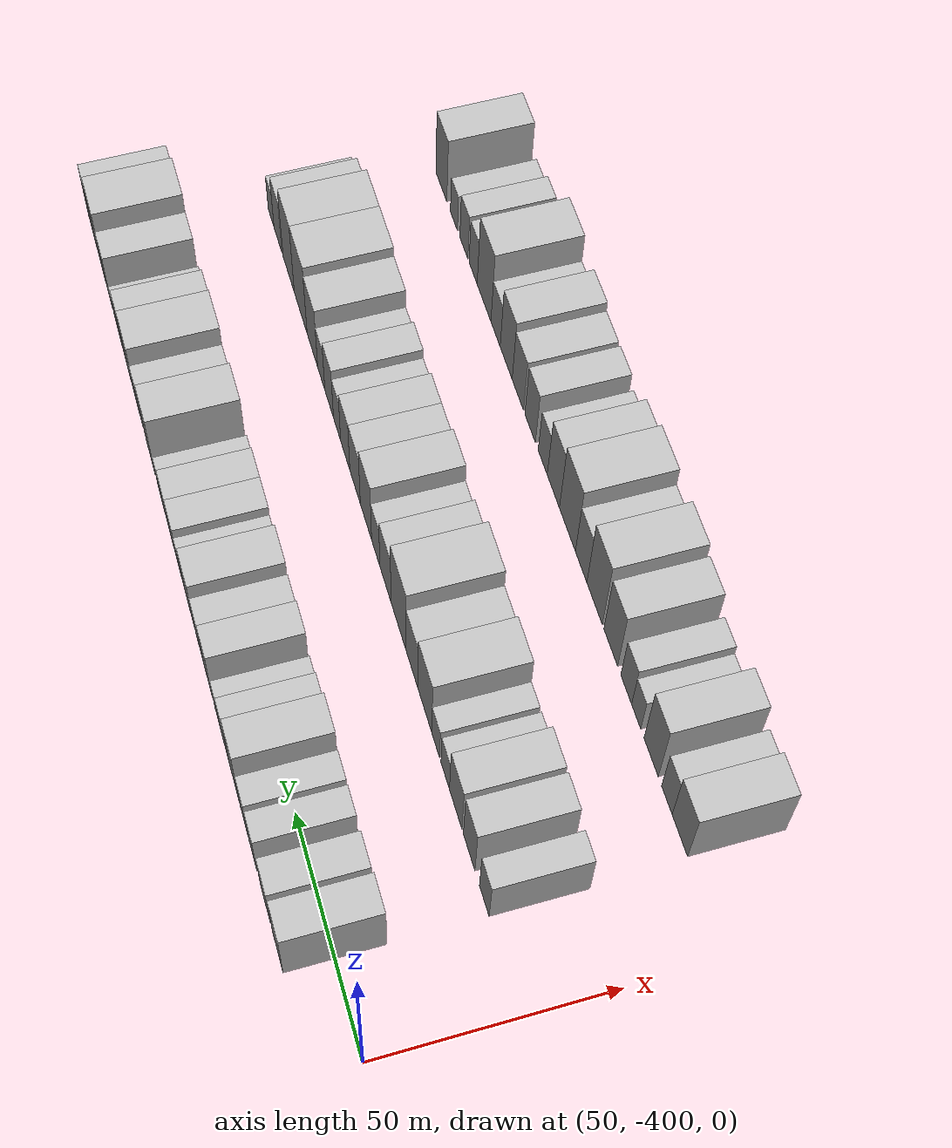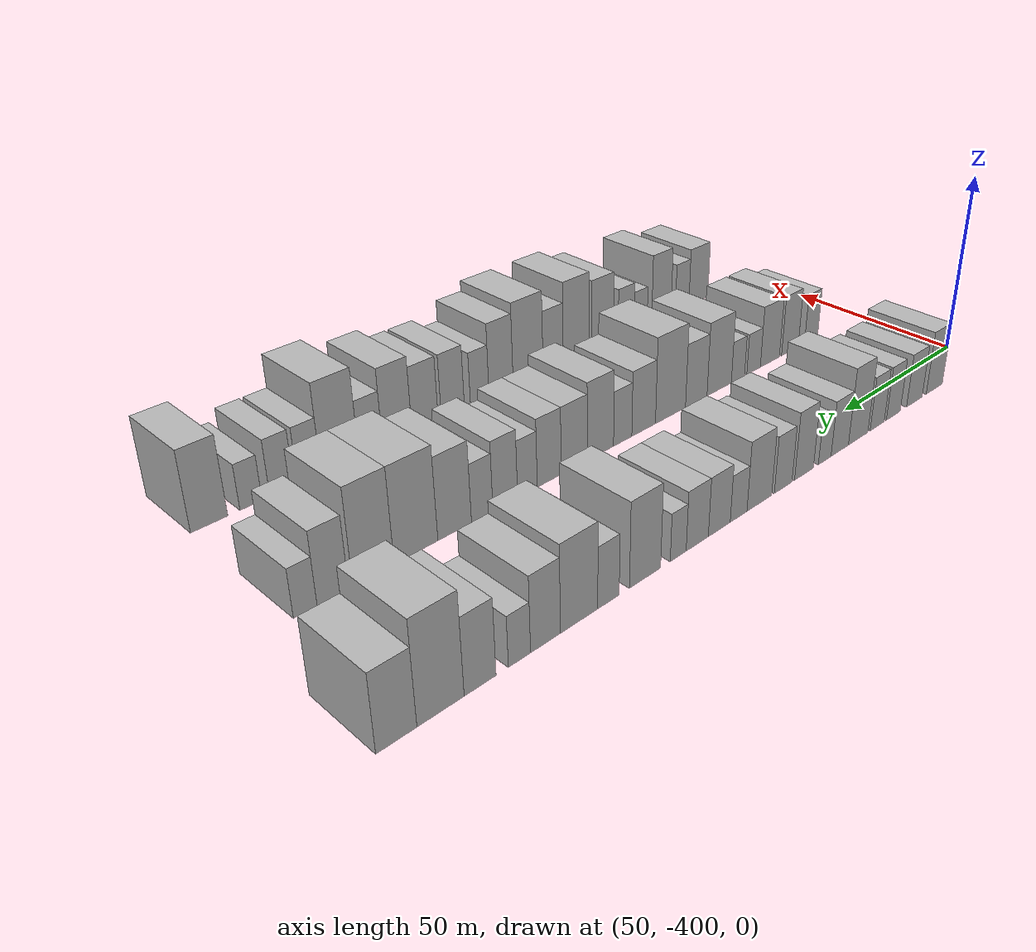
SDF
<sdf version="1.6">
 <world name="default">
  <model name="building_1">
   <static>1</static>
   <pose>50.0000 -375.9654 0 0.000000 0.000000 0.000000</pose>
   <link name="link">
    <pose>0 0 9.00 0 0 0</pose>
    <collision name="collision"><geometry><box><size>20.0000 8.0692 18.0000</size></box></geometry></collision>
    <visual name="visual">
     <cast_shadows>0</cast_shadows>
     <geometry><box><size>20.0000 8.0692 18.0000</size></box></geometry>
     <material>
      <script>
       <uri>model://HANNAS_wall/materials/scripts</uri>
       <uri>model://HANNAS_wall/materials/textures</uri>
       <name>vrc/HANNAS_wall</name>
      </script>
     </material>
    </visual>
   </link>
  </model>
  <model name="building_2">
   <static>1</static>
   <pose>50.0000 -366.1815 0 0.000000 0.000000 0.000000</pose>
   <link name="link">
    <pose>0 0 7.50 0 0 0</pose>
    <collision name="collision"><geometry><box><size>20.0000 7.4985 15.0000</size></box></geometry></collision>
    <visual name="visual">
     <cast_shadows>0</cast_shadows>
     <geometry><box><size>20.0000 7.4985 15.0000</size></box></geometry>
     <material>
      <script>
       <uri>model://HANNAS_wall/materials/scripts</uri>
       <uri>model://HANNAS_wall/materials/textures</uri>
       <name>vrc/HANNAS_wall</name>
      </script>
     </material>
    </visual>
   </link>
  </model>
  <model name="building_3">
   <static>1</static>
   <pose>50.0000 -356.2268 0 0.000000 0.000000 0.000000</pose>
   <link name="link">
    <pose>0 0 7.50 0 0 0</pose>
    <collision name="collision"><geometry><box><size>20.0000 6.4109 15.0000</size></box></geometry></collision>
    <visual name="visual">
     <cast_shadows>0</cast_shadows>
     <geometry><box><size>20.0000 6.4109 15.0000</size></box></geometry>
     <material>
      <script>
       <uri>model://HANNAS_wall/materials/scripts</uri>
       <uri>model://HANNAS_wall/materials/textures</uri>
       <name>vrc/HANNAS_wall</name>
      </script>
     </material>
    </visual>
   </link>
  </model>
  <model name="building_4">
   <static>1</static>
   <pose>50.0000 -348.8674 0 0.000000 0.000000 0.000000</pose>
   <link name="link">
    <pose>0 0 7.50 0 0 0</pose>
    <collision name="collision"><geometry><box><size>20.0000 6.3079 15.0000</size></box></geometry></collision>
    <visual name="visual">
     <cast_shadows>0</cast_shadows>
     <geometry><box><size>20.0000 6.3079 15.0000</size></box></geometry>
     <material>
      <script>
       <uri>model://HANNAS_wall/materials/scripts</uri>
       <uri>model://HANNAS_wall/materials/textures</uri>
       <name>vrc/HANNAS_wall</name>
      </script>
     </material>
    </visual>
   </link>
  </model>
  <model name="building_5">
   <static>1</static>
   <pose>50.0000 -340.4998 0 0.000000 0.000000 0.000000</pose>
   <link name="link">
    <pose>0 0 10.50 0 0 0</pose>
    <collision name="collision"><geometry><box><size>20.0000 8.4273 21.0000</size></box></geometry></collision>
    <visual name="visual">
     <cast_shadows>0</cast_shadows>
     <geometry><box><size>20.0000 8.4273 21.0000</size></box></geometry>
     <material>
      <script>
       <uri>model://HANNAS_wall/materials/scripts</uri>
       <uri>model://HANNAS_wall/materials/textures</uri>
       <name>vrc/HANNAS_wall</name>
      </script>
     </material>
    </visual>
   </link>
  </model>
  <model name="building_6">
   <static>1</static>
   <pose>50.0000 -332.6491 0 0.000000 0.000000 0.000000</pose>
   <link name="link">
    <pose>0 0 7.50 0 0 0</pose>
    <collision name="collision"><geometry><box><size>20.0000 7.2742 15.0000</size></box></geometry></collision>
    <visual name="visual">
     <cast_shadows>0</cast_shadows>
     <geometry><box><size>20.0000 7.2742 15.0000</size></box></geometry>
     <material>
      <script>
       <uri>model://HANNAS_wall/materials/scripts</uri>
       <uri>model://HANNAS_wall/materials/textures</uri>
       <name>vrc/HANNAS_wall</name>
      </script>
     </material>
    </visual>
   </link>
  </model>
  <model name="building_7">
   <static>1</static>
   <pose>50.0000 -326.4357 0 0.000000 0.000000 0.000000</pose>
   <link name="link">
    <pose>0 0 6.00 0 0 0</pose>
    <collision name="collision"><geometry><box><size>20.0000 5.1526 12.0000</size></box></geometry></collision>
    <visual name="visual">
     <cast_shadows>0</cast_shadows>
     <geometry><box><size>20.0000 5.1526 12.0000</size></box></geometry>
     <material>
      <script>
       <uri>model://HANNAS_wall/materials/scripts</uri>
       <uri>model://HANNAS_wall/materials/textures</uri>
       <name>vrc/HANNAS_wall</name>
      </script>
     </material>
    </visual>
   </link>
  </model>
  <model name="building_8">
   <static>1</static>
   <pose>50.0000 -318.1620 0 0.000000 0.000000 0.000000</pose>
   <link name="link">
    <pose>0 0 9.00 0 0 0</pose>
    <collision name="collision"><geometry><box><size>20.0000 7.3948 18.0000</size></box></geometry></collision>
    <visual name="visual">
     <cast_shadows>0</cast_shadows>
     <geometry><box><size>20.0000 7.3948 18.0000</size></box></geometry>
     <material>
      <script>
       <uri>model://HANNAS_wall/materials/scripts</uri>
       <uri>model://HANNAS_wall/materials/textures</uri>
       <name>vrc/HANNAS_wall</name>
      </script>
     </material>
    </visual>
   </link>
  </model>
  <model name="building_9">
   <static>1</static>
   <pose>50.0000 -310.1346 0 0.000000 0.000000 0.000000</pose>
   <link name="link">
    <pose>0 0 7.50 0 0 0</pose>
    <collision name="collision"><geometry><box><size>20.0000 6.6600 15.0000</size></box></geometry></collision>
    <visual name="visual">
     <cast_shadows>0</cast_shadows>
     <geometry><box><size>20.0000 6.6600 15.0000</size></box></geometry>
     <material>
      <script>
       <uri>model://HANNAS_wall/materials/scripts</uri>
       <uri>model://HANNAS_wall/materials/textures</uri>
       <name>vrc/HANNAS_wall</name>
      </script>
     </material>
    </visual>
   </link>
  </model>
  <model name="building_10">
   <static>1</static>
   <pose>50.0000 -301.3234 0 0.000000 0.000000 0.000000</pose>
   <link name="link">
    <pose>0 0 9.00 0 0 0</pose>
    <collision name="collision"><geometry><box><size>20.0000 8.9625 18.0000</size></box></geometry></collision>
    <visual name="visual">
     <cast_shadows>0</cast_shadows>
     <geometry><box><size>20.0000 8.9625 18.0000</size></box></geometry>
     <material>
      <script>
       <uri>model://HANNAS_wall/materials/scripts</uri>
       <uri>model://HANNAS_wall/materials/textures</uri>
       <name>vrc/HANNAS_wall</name>
      </script>
     </material>
    </visual>
   </link>
  </model>
  <model name="building_11">
   <static>1</static>
   <pose>50.0000 -293.9074 0 0.000000 0.000000 0.000000</pose>
   <link name="link">
    <pose>0 0 6.00 0 0 0</pose>
    <collision name="collision"><geometry><box><size>20.0000 5.8694 12.0000</size></box></geometry></collision>
    <visual name="visual">
     <cast_shadows>0</cast_shadows>
     <geometry><box><size>20.0000 5.8694 12.0000</size></box></geometry>
     <material>
      <script>
       <uri>model://HANNAS_wall/materials/scripts</uri>
       <uri>model://HANNAS_wall/materials/textures</uri>
       <name>vrc/HANNAS_wall</name>
      </script>
     </material>
    </visual>
   </link>
  </model>
  <model name="building_12">
   <static>1</static>
   <pose>50.0000 -287.2578 0 0.000000 0.000000 0.000000</pose>
   <link name="link">
    <pose>0 0 7.50 0 0 0</pose>
    <collision name="collision"><geometry><box><size>20.0000 7.4297 15.0000</size></box></geometry></collision>
    <visual name="visual">
     <cast_shadows>0</cast_shadows>
     <geometry><box><size>20.0000 7.4297 15.0000</size></box></geometry>
     <material>
      <script>
       <uri>model://HANNAS_wall/materials/scripts</uri>
       <uri>model://HANNAS_wall/materials/textures</uri>
       <name>vrc/HANNAS_wall</name>
      </script>
     </material>
    </visual>
   </link>
  </model>
  <model name="building_13">
   <static>1</static>
   <pose>50.0000 -279.9120 0 0.000000 0.000000 0.000000</pose>
   <link name="link">
    <pose>0 0 7.50 0 0 0</pose>
    <collision name="collision"><geometry><box><size>20.0000 7.2620 15.0000</size></box></geometry></collision>
    <visual name="visual">
     <cast_shadows>0</cast_shadows>
     <geometry><box><size>20.0000 7.2620 15.0000</size></box></geometry>
     <material>
      <script>
       <uri>model://HANNAS_wall/materials/scripts</uri>
       <uri>model://HANNAS_wall/materials/textures</uri>
       <name>vrc/HANNAS_wall</name>
      </script>
     </material>
    </visual>
   </link>
  </model>
  <model name="building_14">
   <static>1</static>
   <pose>50.0000 -273.7572 0 0.000000 0.000000 0.000000</pose>
   <link name="link">
    <pose>0 0 6.00 0 0 0</pose>
    <collision name="collision"><geometry><box><size>20.0000 5.0476 12.0000</size></box></geometry></collision>
    <visual name="visual">
     <cast_shadows>0</cast_shadows>
     <geometry><box><size>20.0000 5.0476 12.0000</size></box></geometry>
     <material>
      <script>
       <uri>model://HANNAS_wall/materials/scripts</uri>
       <uri>model://HANNAS_wall/materials/textures</uri>
       <name>vrc/HANNAS_wall</name>
      </script>
     </material>
    </visual>
   </link>
  </model>
  <model name="building_15">
   <static>1</static>
   <pose>50.0000 -263.5407 0 0.000000 0.000000 0.000000</pose>
   <link name="link">
    <pose>0 0 10.50 0 0 0</pose>
    <collision name="collision"><geometry><box><size>20.0000 9.3854 21.0000</size></box></geometry></collision>
    <visual name="visual">
     <cast_shadows>0</cast_shadows>
     <geometry><box><size>20.0000 9.3854 21.0000</size></box></geometry>
     <material>
      <script>
       <uri>model://HANNAS_wall/materials/scripts</uri>
       <uri>model://HANNAS_wall/materials/textures</uri>
       <name>vrc/HANNAS_wall</name>
      </script>
     </material>
    </visual>
   </link>
  </model>
  <model name="building_16">
   <static>1</static>
   <pose>50.0000 -252.7964 0 0.000000 0.000000 0.000000</pose>
   <link name="link">
    <pose>0 0 7.50 0 0 0</pose>
    <collision name="collision"><geometry><box><size>20.0000 6.1031 15.0000</size></box></geometry></collision>
    <visual name="visual">
     <cast_shadows>0</cast_shadows>
     <geometry><box><size>20.0000 6.1031 15.0000</size></box></geometry>
     <material>
      <script>
       <uri>model://HANNAS_wall/materials/scripts</uri>
       <uri>model://HANNAS_wall/materials/textures</uri>
       <name>vrc/HANNAS_wall</name>
      </script>
     </material>
    </visual>
   </link>
  </model>
  <model name="building_17">
   <static>1</static>
   <pose>50.0000 -244.6731 0 0.000000 0.000000 0.000000</pose>
   <link name="link">
    <pose>0 0 10.50 0 0 0</pose>
    <collision name="collision"><geometry><box><size>20.0000 10.1435 21.0000</size></box></geometry></collision>
    <visual name="visual">
     <cast_shadows>0</cast_shadows>
     <geometry><box><size>20.0000 10.1435 21.0000</size></box></geometry>
     <material>
      <script>
       <uri>model://HANNAS_wall/materials/scripts</uri>
       <uri>model://HANNAS_wall/materials/textures</uri>
       <name>vrc/HANNAS_wall</name>
      </script>
     </material>
    </visual>
   </link>
  </model>
  <model name="building_18">
   <static>1</static>
   <pose>50.0000 -235.7101 0 0.000000 0.000000 0.000000</pose>
   <link name="link">
    <pose>0 0 9.00 0 0 0</pose>
    <collision name="collision"><geometry><box><size>20.0000 7.7825 18.0000</size></box></geometry></collision>
    <visual name="visual">
     <cast_shadows>0</cast_shadows>
     <geometry><box><size>20.0000 7.7825 18.0000</size></box></geometry>
     <material>
      <script>
       <uri>model://HANNAS_wall/materials/scripts</uri>
       <uri>model://HANNAS_wall/materials/textures</uri>
       <name>vrc/HANNAS_wall</name>
      </script>
     </material>
    </visual>
   </link>
  </model>
  <model name="building_19">
   <static>1</static>
   <pose>50.0000 -229.0396 0 0.000000 0.000000 0.000000</pose>
   <link name="link">
    <pose>0 0 6.00 0 0 0</pose>
    <collision name="collision"><geometry><box><size>20.0000 5.5586 12.0000</size></box></geometry></collision>
    <visual name="visual">
     <cast_shadows>0</cast_shadows>
     <geometry><box><size>20.0000 5.5586 12.0000</size></box></geometry>
     <material>
      <script>
       <uri>model://HANNAS_wall/materials/scripts</uri>
       <uri>model://HANNAS_wall/materials/textures</uri>
       <name>vrc/HANNAS_wall</name>
      </script>
     </material>
    </visual>
   </link>
  </model>
  <model name="building_20">
   <static>1</static>
   <pose>50.0000 -219.4842 0 0.000000 0.000000 0.000000</pose>
   <link name="link">
    <pose>0 0 9.00 0 0 0</pose>
    <collision name="collision"><geometry><box><size>20.0000 7.5521 18.0000</size></box></geometry></collision>
    <visual name="visual">
     <cast_shadows>0</cast_shadows>
     <geometry><box><size>20.0000 7.5521 18.0000</size></box></geometry>
     <material>
      <script>
       <uri>model://HANNAS_wall/materials/scripts</uri>
       <uri>model://HANNAS_wall/materials/textures</uri>
       <name>vrc/HANNAS_wall</name>
      </script>
     </material>
    </visual>
   </link>
  </model>
  <model name="building_21">
   <static>1</static>
   <pose>50.0000 -210.4053 0 0.000000 0.000000 0.000000</pose>
   <link name="link">
    <pose>0 0 12.00 0 0 0</pose>
    <collision name="collision"><geometry><box><size>20.0000 10.6058 24.0000</size></box></geometry></collision>
    <visual name="visual">
     <cast_shadows>0</cast_shadows>
     <geometry><box><size>20.0000 10.6058 24.0000</size></box></geometry>
     <material>
      <script>
       <uri>model://HANNAS_wall/materials/scripts</uri>
       <uri>model://HANNAS_wall/materials/textures</uri>
       <name>vrc/HANNAS_wall</name>
      </script>
     </material>
    </visual>
   </link>
  </model>
  <model name="building_22">
   <static>1</static>
   <pose>50.0000 -200.7312 0 0.000000 0.000000 0.000000</pose>
   <link name="link">
    <pose>0 0 9.00 0 0 0</pose>
    <collision name="collision"><geometry><box><size>20.0000 8.7424 18.0000</size></box></geometry></collision>
    <visual name="visual">
     <cast_shadows>0</cast_shadows>
     <geometry><box><size>20.0000 8.7424 18.0000</size></box></geometry>
     <material>
      <script>
       <uri>model://HANNAS_wall/materials/scripts</uri>
       <uri>model://HANNAS_wall/materials/textures</uri>
       <name>vrc/HANNAS_wall</name>
      </script>
     </material>
    </visual>
   </link>
  </model>
  <model name="building_85">
   <static>1</static>
   <pose>90.0000 -376.8421 0 0.000000 0.000000 0.000000</pose>
   <link name="link">
    <pose>0 0 7.50 0 0 0</pose>
    <collision name="collision"><geometry><box><size>20.0000 6.3157 15.0000</size></box></geometry></collision>
    <visual name="visual">
     <cast_shadows>0</cast_shadows>
     <geometry><box><size>20.0000 6.3157 15.0000</size></box></geometry>
     <material>
      <script>
       <uri>model://HANNAS_wall/materials/scripts</uri>
       <uri>model://HANNAS_wall/materials/textures</uri>
       <name>vrc/HANNAS_wall</name>
      </script>
     </material>
    </visual>
   </link>
  </model>
  <model name="building_86">
   <static>1</static>
   <pose>90.0000 -366.8303 0 0.000000 0.000000 0.000000</pose>
   <link name="link">
    <pose>0 0 9.00 0 0 0</pose>
    <collision name="collision"><geometry><box><size>20.0000 7.7080 18.0000</size></box></geometry></collision>
    <visual name="visual">
     <cast_shadows>0</cast_shadows>
     <geometry><box><size>20.0000 7.7080 18.0000</size></box></geometry>
     <material>
      <script>
       <uri>model://HANNAS_wall/materials/scripts</uri>
       <uri>model://HANNAS_wall/materials/textures</uri>
       <name>vrc/HANNAS_wall</name>
      </script>
     </material>
    </visual>
   </link>
  </model>
  <model name="building_87">
   <static>1</static>
   <pose>90.0000 -357.7024 0 0.000000 0.000000 0.000000</pose>
   <link name="link">
    <pose>0 0 9.00 0 0 0</pose>
    <collision name="collision"><geometry><box><size>20.0000 8.5478 18.0000</size></box></geometry></collision>
    <visual name="visual">
     <cast_shadows>0</cast_shadows>
     <geometry><box><size>20.0000 8.5478 18.0000</size></box></geometry>
     <material>
      <script>
       <uri>model://HANNAS_wall/materials/scripts</uri>
       <uri>model://HANNAS_wall/materials/textures</uri>
       <name>vrc/HANNAS_wall</name>
      </script>
     </material>
    </visual>
   </link>
  </model>
  <model name="building_88">
   <static>1</static>
   <pose>90.0000 -350.4764 0 0.000000 0.000000 0.000000</pose>
   <link name="link">
    <pose>0 0 6.00 0 0 0</pose>
    <collision name="collision"><geometry><box><size>20.0000 5.9042 12.0000</size></box></geometry></collision>
    <visual name="visual">
     <cast_shadows>0</cast_shadows>
     <geometry><box><size>20.0000 5.9042 12.0000</size></box></geometry>
     <material>
      <script>
       <uri>model://HANNAS_wall/materials/scripts</uri>
       <uri>model://HANNAS_wall/materials/textures</uri>
       <name>vrc/HANNAS_wall</name>
      </script>
     </material>
    </visual>
   </link>
  </model>
  <model name="building_89">
   <static>1</static>
   <pose>90.0000 -343.7154 0 0.000000 0.000000 0.000000</pose>
   <link name="link">
    <pose>0 0 6.00 0 0 0</pose>
    <collision name="collision"><geometry><box><size>20.0000 5.6179 12.0000</size></box></geometry></collision>
    <visual name="visual">
     <cast_shadows>0</cast_shadows>
     <geometry><box><size>20.0000 5.6179 12.0000</size></box></geometry>
     <material>
      <script>
       <uri>model://HANNAS_wall/materials/scripts</uri>
       <uri>model://HANNAS_wall/materials/textures</uri>
       <name>vrc/HANNAS_wall</name>
      </script>
     </material>
    </visual>
   </link>
  </model>
  <model name="building_90">
   <static>1</static>
   <pose>90.0000 -335.8997 0 0.000000 0.000000 0.000000</pose>
   <link name="link">
    <pose>0 0 10.50 0 0 0</pose>
    <collision name="collision"><geometry><box><size>20.0000 10.0136 21.0000</size></box></geometry></collision>
    <visual name="visual">
     <cast_shadows>0</cast_shadows>
     <geometry><box><size>20.0000 10.0136 21.0000</size></box></geometry>
     <material>
      <script>
       <uri>model://HANNAS_wall/materials/scripts</uri>
       <uri>model://HANNAS_wall/materials/textures</uri>
       <name>vrc/HANNAS_wall</name>
      </script>
     </material>
    </visual>
   </link>
  </model>
  <model name="building_91">
   <static>1</static>
   <pose>90.0000 -326.6148 0 0.000000 0.000000 0.000000</pose>
   <link name="link">
    <pose>0 0 9.00 0 0 0</pose>
    <collision name="collision"><geometry><box><size>20.0000 8.5561 18.0000</size></box></geometry></collision>
    <visual name="visual">
     <cast_shadows>0</cast_shadows>
     <geometry><box><size>20.0000 8.5561 18.0000</size></box></geometry>
     <material>
      <script>
       <uri>model://HANNAS_wall/materials/scripts</uri>
       <uri>model://HANNAS_wall/materials/textures</uri>
       <name>vrc/HANNAS_wall</name>
      </script>
     </material>
    </visual>
   </link>
  </model>
  <model name="building_92">
   <static>1</static>
   <pose>90.0000 -316.6155 0 0.000000 0.000000 0.000000</pose>
   <link name="link">
    <pose>0 0 12.00 0 0 0</pose>
    <collision name="collision"><geometry><box><size>20.0000 11.4425 24.0000</size></box></geometry></collision>
    <visual name="visual">
     <cast_shadows>0</cast_shadows>
     <geometry><box><size>20.0000 11.4425 24.0000</size></box></geometry>
     <material>
      <script>
       <uri>model://HANNAS_wall/materials/scripts</uri>
       <uri>model://HANNAS_wall/materials/textures</uri>
       <name>vrc/HANNAS_wall</name>
      </script>
     </material>
    </visual>
   </link>
  </model>
  <model name="building_93">
   <static>1</static>
   <pose>90.0000 -306.5682 0 0.000000 0.000000 0.000000</pose>
   <link name="link">
    <pose>0 0 9.00 0 0 0</pose>
    <collision name="collision"><geometry><box><size>20.0000 8.6522 18.0000</size></box></geometry></collision>
    <visual name="visual">
     <cast_shadows>0</cast_shadows>
     <geometry><box><size>20.0000 8.6522 18.0000</size></box></geometry>
     <material>
      <script>
       <uri>model://HANNAS_wall/materials/scripts</uri>
       <uri>model://HANNAS_wall/materials/textures</uri>
       <name>vrc/HANNAS_wall</name>
      </script>
     </material>
    </visual>
   </link>
  </model>
  <model name="building_94">
   <static>1</static>
   <pose>90.0000 -299.0113 0 0.000000 0.000000 0.000000</pose>
   <link name="link">
    <pose>0 0 7.50 0 0 0</pose>
    <collision name="collision"><geometry><box><size>20.0000 6.4617 15.0000</size></box></geometry></collision>
    <visual name="visual">
     <cast_shadows>0</cast_shadows>
     <geometry><box><size>20.0000 6.4617 15.0000</size></box></geometry>
     <material>
      <script>
       <uri>model://HANNAS_wall/materials/scripts</uri>
       <uri>model://HANNAS_wall/materials/textures</uri>
       <name>vrc/HANNAS_wall</name>
      </script>
     </material>
    </visual>
   </link>
  </model>
  <model name="building_95">
   <static>1</static>
   <pose>90.0000 -291.2813 0 0.000000 0.000000 0.000000</pose>
   <link name="link">
    <pose>0 0 10.50 0 0 0</pose>
    <collision name="collision"><geometry><box><size>20.0000 8.9981 21.0000</size></box></geometry></collision>
    <visual name="visual">
     <cast_shadows>0</cast_shadows>
     <geometry><box><size>20.0000 8.9981 21.0000</size></box></geometry>
     <material>
      <script>
       <uri>model://HANNAS_wall/materials/scripts</uri>
       <uri>model://HANNAS_wall/materials/textures</uri>
       <name>vrc/HANNAS_wall</name>
      </script>
     </material>
    </visual>
   </link>
  </model>
  <model name="building_96">
   <static>1</static>
   <pose>90.0000 -282.5182 0 0.000000 0.000000 0.000000</pose>
   <link name="link">
    <pose>0 0 9.00 0 0 0</pose>
    <collision name="collision"><geometry><box><size>20.0000 8.5282 18.0000</size></box></geometry></collision>
    <visual name="visual">
     <cast_shadows>0</cast_shadows>
     <geometry><box><size>20.0000 8.5282 18.0000</size></box></geometry>
     <material>
      <script>
       <uri>model://HANNAS_wall/materials/scripts</uri>
       <uri>model://HANNAS_wall/materials/textures</uri>
       <name>vrc/HANNAS_wall</name>
      </script>
     </material>
    </visual>
   </link>
  </model>
  <model name="building_97">
   <static>1</static>
   <pose>90.0000 -274.4466 0 0.000000 0.000000 0.000000</pose>
   <link name="link">
    <pose>0 0 9.00 0 0 0</pose>
    <collision name="collision"><geometry><box><size>20.0000 7.6148 18.0000</size></box></geometry></collision>
    <visual name="visual">
     <cast_shadows>0</cast_shadows>
     <geometry><box><size>20.0000 7.6148 18.0000</size></box></geometry>
     <material>
      <script>
       <uri>model://HANNAS_wall/materials/scripts</uri>
       <uri>model://HANNAS_wall/materials/textures</uri>
       <name>vrc/HANNAS_wall</name>
      </script>
     </material>
    </visual>
   </link>
  </model>
  <model name="building_98">
   <static>1</static>
   <pose>90.0000 -267.6219 0 0.000000 0.000000 0.000000</pose>
   <link name="link">
    <pose>0 0 7.50 0 0 0</pose>
    <collision name="collision"><geometry><box><size>20.0000 6.0345 15.0000</size></box></geometry></collision>
    <visual name="visual">
     <cast_shadows>0</cast_shadows>
     <geometry><box><size>20.0000 6.0345 15.0000</size></box></geometry>
     <material>
      <script>
       <uri>model://HANNAS_wall/materials/scripts</uri>
       <uri>model://HANNAS_wall/materials/textures</uri>
       <name>vrc/HANNAS_wall</name>
      </script>
     </material>
    </visual>
   </link>
  </model>
  <model name="building_99">
   <static>1</static>
   <pose>90.0000 -260.9218 0 0.000000 0.000000 0.000000</pose>
   <link name="link">
    <pose>0 0 9.00 0 0 0</pose>
    <collision name="collision"><geometry><box><size>20.0000 7.3658 18.0000</size></box></geometry></collision>
    <visual name="visual">
     <cast_shadows>0</cast_shadows>
     <geometry><box><size>20.0000 7.3658 18.0000</size></box></geometry>
     <material>
      <script>
       <uri>model://HANNAS_wall/materials/scripts</uri>
       <uri>model://HANNAS_wall/materials/textures</uri>
       <name>vrc/HANNAS_wall</name>
      </script>
     </material>
    </visual>
   </link>
  </model>
  <model name="building_100">
   <static>1</static>
   <pose>90.0000 -254.1460 0 0.000000 0.000000 0.000000</pose>
   <link name="link">
    <pose>0 0 7.50 0 0 0</pose>
    <collision name="collision"><geometry><box><size>20.0000 6.1857 15.0000</size></box></geometry></collision>
    <visual name="visual">
     <cast_shadows>0</cast_shadows>
     <geometry><box><size>20.0000 6.1857 15.0000</size></box></geometry>
     <material>
      <script>
       <uri>model://HANNAS_wall/materials/scripts</uri>
       <uri>model://HANNAS_wall/materials/textures</uri>
       <name>vrc/HANNAS_wall</name>
      </script>
     </material>
    </visual>
   </link>
  </model>
  <model name="building_101">
   <static>1</static>
   <pose>90.0000 -246.3802 0 0.000000 0.000000 0.000000</pose>
   <link name="link">
    <pose>0 0 10.50 0 0 0</pose>
    <collision name="collision"><geometry><box><size>20.0000 9.3460 21.0000</size></box></geometry></collision>
    <visual name="visual">
     <cast_shadows>0</cast_shadows>
     <geometry><box><size>20.0000 9.3460 21.0000</size></box></geometry>
     <material>
      <script>
       <uri>model://HANNAS_wall/materials/scripts</uri>
       <uri>model://HANNAS_wall/materials/textures</uri>
       <name>vrc/HANNAS_wall</name>
      </script>
     </material>
    </visual>
   </link>
  </model>
  <model name="building_102">
   <static>1</static>
   <pose>90.0000 -235.9401 0 0.000000 0.000000 0.000000</pose>
   <link name="link">
    <pose>0 0 12.00 0 0 0</pose>
    <collision name="collision"><geometry><box><size>20.0000 11.5341 24.0000</size></box></geometry></collision>
    <visual name="visual">
     <cast_shadows>0</cast_shadows>
     <geometry><box><size>20.0000 11.5341 24.0000</size></box></geometry>
     <material>
      <script>
       <uri>model://HANNAS_wall/materials/scripts</uri>
       <uri>model://HANNAS_wall/materials/textures</uri>
       <name>vrc/HANNAS_wall</name>
      </script>
     </material>
    </visual>
   </link>
  </model>
  <model name="building_103">
   <static>1</static>
   <pose>90.0000 -225.0055 0 0.000000 0.000000 0.000000</pose>
   <link name="link">
    <pose>0 0 12.00 0 0 0</pose>
    <collision name="collision"><geometry><box><size>20.0000 10.3350 24.0000</size></box></geometry></collision>
    <visual name="visual">
     <cast_shadows>0</cast_shadows>
     <geometry><box><size>20.0000 10.3350 24.0000</size></box></geometry>
     <material>
      <script>
       <uri>model://HANNAS_wall/materials/scripts</uri>
       <uri>model://HANNAS_wall/materials/textures</uri>
       <name>vrc/HANNAS_wall</name>
      </script>
     </material>
    </visual>
   </link>
  </model>
  <model name="building_104">
   <static>1</static>
   <pose>90.0000 -215.0917 0 0.000000 0.000000 0.000000</pose>
   <link name="link">
    <pose>0 0 9.00 0 0 0</pose>
    <collision name="collision"><geometry><box><size>20.0000 7.4927 18.0000</size></box></geometry></collision>
    <visual name="visual">
     <cast_shadows>0</cast_shadows>
     <geometry><box><size>20.0000 7.4927 18.0000</size></box></geometry>
     <material>
      <script>
       <uri>model://HANNAS_wall/materials/scripts</uri>
       <uri>model://HANNAS_wall/materials/textures</uri>
       <name>vrc/HANNAS_wall</name>
      </script>
     </material>
    </visual>
   </link>
  </model>
  <model name="building_105">
   <static>1</static>
   <pose>90.0000 -208.6296 0 0.000000 0.000000 0.000000</pose>
   <link name="link">
    <pose>0 0 6.00 0 0 0</pose>
    <collision name="collision"><geometry><box><size>20.0000 5.4314 12.0000</size></box></geometry></collision>
    <visual name="visual">
     <cast_shadows>0</cast_shadows>
     <geometry><box><size>20.0000 5.4314 12.0000</size></box></geometry>
     <material>
      <script>
       <uri>model://HANNAS_wall/materials/scripts</uri>
       <uri>model://HANNAS_wall/materials/textures</uri>
       <name>vrc/HANNAS_wall</name>
      </script>
     </material>
    </visual>
   </link>
  </model>
  <model name="building_173">
   <static>1</static>
   <pose>130.0000 -374.5744 0 0.000000 0.000000 0.000000</pose>
   <link name="link">
    <pose>0 0 9.00 0 0 0</pose>
    <collision name="collision"><geometry><box><size>20.0000 8.8513 18.0000</size></box></geometry></collision>
    <visual name="visual">
     <cast_shadows>0</cast_shadows>
     <geometry><box><size>20.0000 8.8513 18.0000</size></box></geometry>
     <material>
      <script>
       <uri>model://HANNAS_wall/materials/scripts</uri>
       <uri>model://HANNAS_wall/materials/textures</uri>
       <name>vrc/HANNAS_wall</name>
      </script>
     </material>
    </visual>
   </link>
  </model>
  <model name="building_174">
   <static>1</static>
   <pose>130.0000 -367.0625 0 0.000000 0.000000 0.000000</pose>
   <link name="link">
    <pose>0 0 7.50 0 0 0</pose>
    <collision name="collision"><geometry><box><size>20.0000 6.1723 15.0000</size></box></geometry></collision>
    <visual name="visual">
     <cast_shadows>0</cast_shadows>
     <geometry><box><size>20.0000 6.1723 15.0000</size></box></geometry>
     <material>
      <script>
       <uri>model://HANNAS_wall/materials/scripts</uri>
       <uri>model://HANNAS_wall/materials/textures</uri>
       <name>vrc/HANNAS_wall</name>
      </script>
     </material>
    </visual>
   </link>
  </model>
  <model name="building_175">
   <static>1</static>
   <pose>130.0000 -357.7271 0 0.000000 0.000000 0.000000</pose>
   <link name="link">
    <pose>0 0 10.50 0 0 0</pose>
    <collision name="collision"><geometry><box><size>20.0000 8.4984 21.0000</size></box></geometry></collision>
    <visual name="visual">
     <cast_shadows>0</cast_shadows>
     <geometry><box><size>20.0000 8.4984 21.0000</size></box></geometry>
     <material>
      <script>
       <uri>model://HANNAS_wall/materials/scripts</uri>
       <uri>model://HANNAS_wall/materials/textures</uri>
       <name>vrc/HANNAS_wall</name>
      </script>
     </material>
    </visual>
   </link>
  </model>
  <model name="building_176">
   <static>1</static>
   <pose>130.0000 -348.6984 0 0.000000 0.000000 0.000000</pose>
   <link name="link">
    <pose>0 0 6.00 0 0 0</pose>
    <collision name="collision"><geometry><box><size>20.0000 5.5590 12.0000</size></box></geometry></collision>
    <visual name="visual">
     <cast_shadows>0</cast_shadows>
     <geometry><box><size>20.0000 5.5590 12.0000</size></box></geometry>
     <material>
      <script>
       <uri>model://HANNAS_wall/materials/scripts</uri>
       <uri>model://HANNAS_wall/materials/textures</uri>
       <name>vrc/HANNAS_wall</name>
      </script>
     </material>
    </visual>
   </link>
  </model>
  <model name="building_177">
   <static>1</static>
   <pose>130.0000 -342.5789 0 0.000000 0.000000 0.000000</pose>
   <link name="link">
    <pose>0 0 7.50 0 0 0</pose>
    <collision name="collision"><geometry><box><size>20.0000 6.6800 15.0000</size></box></geometry></collision>
    <visual name="visual">
     <cast_shadows>0</cast_shadows>
     <geometry><box><size>20.0000 6.6800 15.0000</size></box></geometry>
     <material>
      <script>
       <uri>model://HANNAS_wall/materials/scripts</uri>
       <uri>model://HANNAS_wall/materials/textures</uri>
       <name>vrc/HANNAS_wall</name>
      </script>
     </material>
    </visual>
   </link>
  </model>
  <model name="building_178">
   <static>1</static>
   <pose>130.0000 -332.8803 0 0.000000 0.000000 0.000000</pose>
   <link name="link">
    <pose>0 0 10.50 0 0 0</pose>
    <collision name="collision"><geometry><box><size>20.0000 8.7174 21.0000</size></box></geometry></collision>
    <visual name="visual">
     <cast_shadows>0</cast_shadows>
     <geometry><box><size>20.0000 8.7174 21.0000</size></box></geometry>
     <material>
      <script>
       <uri>model://HANNAS_wall/materials/scripts</uri>
       <uri>model://HANNAS_wall/materials/textures</uri>
       <name>vrc/HANNAS_wall</name>
      </script>
     </material>
    </visual>
   </link>
  </model>
  <model name="building_179">
   <static>1</static>
   <pose>130.0000 -322.4954 0 0.000000 0.000000 0.000000</pose>
   <link name="link">
    <pose>0 0 12.00 0 0 0</pose>
    <collision name="collision"><geometry><box><size>20.0000 10.0524 24.0000</size></box></geometry></collision>
    <visual name="visual">
     <cast_shadows>0</cast_shadows>
     <geometry><box><size>20.0000 10.0524 24.0000</size></box></geometry>
     <material>
      <script>
       <uri>model://HANNAS_wall/materials/scripts</uri>
       <uri>model://HANNAS_wall/materials/textures</uri>
       <name>vrc/HANNAS_wall</name>
      </script>
     </material>
    </visual>
   </link>
  </model>
  <model name="building_180">
   <static>1</static>
   <pose>130.0000 -313.6779 0 0.000000 0.000000 0.000000</pose>
   <link name="link">
    <pose>0 0 9.00 0 0 0</pose>
    <collision name="collision"><geometry><box><size>20.0000 7.5827 18.0000</size></box></geometry></collision>
    <visual name="visual">
     <cast_shadows>0</cast_shadows>
     <geometry><box><size>20.0000 7.5827 18.0000</size></box></geometry>
     <material>
      <script>
       <uri>model://HANNAS_wall/materials/scripts</uri>
       <uri>model://HANNAS_wall/materials/textures</uri>
       <name>vrc/HANNAS_wall</name>
      </script>
     </material>
    </visual>
   </link>
  </model>
  <model name="building_181">
   <static>1</static>
   <pose>130.0000 -304.4776 0 0.000000 0.000000 0.000000</pose>
   <link name="link">
    <pose>0 0 12.00 0 0 0</pose>
    <collision name="collision"><geometry><box><size>20.0000 10.8179 24.0000</size></box></geometry></collision>
    <visual name="visual">
     <cast_shadows>0</cast_shadows>
     <geometry><box><size>20.0000 10.8179 24.0000</size></box></geometry>
     <material>
      <script>
       <uri>model://HANNAS_wall/materials/scripts</uri>
       <uri>model://HANNAS_wall/materials/textures</uri>
       <name>vrc/HANNAS_wall</name>
      </script>
     </material>
    </visual>
   </link>
  </model>
  <model name="building_182">
   <static>1</static>
   <pose>130.0000 -294.8591 0 0.000000 0.000000 0.000000</pose>
   <link name="link">
    <pose>0 0 10.50 0 0 0</pose>
    <collision name="collision"><geometry><box><size>20.0000 8.4192 21.0000</size></box></geometry></collision>
    <visual name="visual">
     <cast_shadows>0</cast_shadows>
     <geometry><box><size>20.0000 8.4192 21.0000</size></box></geometry>
     <material>
      <script>
       <uri>model://HANNAS_wall/materials/scripts</uri>
       <uri>model://HANNAS_wall/materials/textures</uri>
       <name>vrc/HANNAS_wall</name>
      </script>
     </material>
    </visual>
   </link>
  </model>
  <model name="building_183">
   <static>1</static>
   <pose>130.0000 -287.4968 0 0.000000 0.000000 0.000000</pose>
   <link name="link">
    <pose>0 0 7.50 0 0 0</pose>
    <collision name="collision"><geometry><box><size>20.0000 6.3054 15.0000</size></box></geometry></collision>
    <visual name="visual">
     <cast_shadows>0</cast_shadows>
     <geometry><box><size>20.0000 6.3054 15.0000</size></box></geometry>
     <material>
      <script>
       <uri>model://HANNAS_wall/materials/scripts</uri>
       <uri>model://HANNAS_wall/materials/textures</uri>
       <name>vrc/HANNAS_wall</name>
      </script>
     </material>
    </visual>
   </link>
  </model>
  <model name="building_184">
   <static>1</static>
   <pose>130.0000 -278.5816 0 0.000000 0.000000 0.000000</pose>
   <link name="link">
    <pose>0 0 9.00 0 0 0</pose>
    <collision name="collision"><geometry><box><size>20.0000 7.5251 18.0000</size></box></geometry></collision>
    <visual name="visual">
     <cast_shadows>0</cast_shadows>
     <geometry><box><size>20.0000 7.5251 18.0000</size></box></geometry>
     <material>
      <script>
       <uri>model://HANNAS_wall/materials/scripts</uri>
       <uri>model://HANNAS_wall/materials/textures</uri>
       <name>vrc/HANNAS_wall</name>
      </script>
     </material>
    </visual>
   </link>
  </model>
  <model name="building_185">
   <static>1</static>
   <pose>130.0000 -269.6998 0 0.000000 0.000000 0.000000</pose>
   <link name="link">
    <pose>0 0 9.00 0 0 0</pose>
    <collision name="collision"><geometry><box><size>20.0000 8.2383 18.0000</size></box></geometry></collision>
    <visual name="visual">
     <cast_shadows>0</cast_shadows>
     <geometry><box><size>20.0000 8.2383 18.0000</size></box></geometry>
     <material>
      <script>
       <uri>model://HANNAS_wall/materials/scripts</uri>
       <uri>model://HANNAS_wall/materials/textures</uri>
       <name>vrc/HANNAS_wall</name>
      </script>
     </material>
    </visual>
   </link>
  </model>
  <model name="building_186">
   <static>1</static>
   <pose>130.0000 -261.1208 0 0.000000 0.000000 0.000000</pose>
   <link name="link">
    <pose>0 0 10.50 0 0 0</pose>
    <collision name="collision"><geometry><box><size>20.0000 8.9198 21.0000</size></box></geometry></collision>
    <visual name="visual">
     <cast_shadows>0</cast_shadows>
     <geometry><box><size>20.0000 8.9198 21.0000</size></box></geometry>
     <material>
      <script>
       <uri>model://HANNAS_wall/materials/scripts</uri>
       <uri>model://HANNAS_wall/materials/textures</uri>
       <name>vrc/HANNAS_wall</name>
      </script>
     </material>
    </visual>
   </link>
  </model>
  <model name="building_187">
   <static>1</static>
   <pose>130.0000 -253.1665 0 0.000000 0.000000 0.000000</pose>
   <link name="link">
    <pose>0 0 7.50 0 0 0</pose>
    <collision name="collision"><geometry><box><size>20.0000 6.9889 15.0000</size></box></geometry></collision>
    <visual name="visual">
     <cast_shadows>0</cast_shadows>
     <geometry><box><size>20.0000 6.9889 15.0000</size></box></geometry>
     <material>
      <script>
       <uri>model://HANNAS_wall/materials/scripts</uri>
       <uri>model://HANNAS_wall/materials/textures</uri>
       <name>vrc/HANNAS_wall</name>
      </script>
     </material>
    </visual>
   </link>
  </model>
  <model name="building_188">
   <static>1</static>
   <pose>130.0000 -244.3643 0 0.000000 0.000000 0.000000</pose>
   <link name="link">
    <pose>0 0 12.00 0 0 0</pose>
    <collision name="collision"><geometry><box><size>20.0000 10.6155 24.0000</size></box></geometry></collision>
    <visual name="visual">
     <cast_shadows>0</cast_shadows>
     <geometry><box><size>20.0000 10.6155 24.0000</size></box></geometry>
     <material>
      <script>
       <uri>model://HANNAS_wall/materials/scripts</uri>
       <uri>model://HANNAS_wall/materials/textures</uri>
       <name>vrc/HANNAS_wall</name>
      </script>
     </material>
    </visual>
   </link>
  </model>
  <model name="building_189">
   <static>1</static>
   <pose>130.0000 -235.8905 0 0.000000 0.000000 0.000000</pose>
   <link name="link">
    <pose>0 0 7.50 0 0 0</pose>
    <collision name="collision"><geometry><box><size>20.0000 6.3322 15.0000</size></box></geometry></collision>
    <visual name="visual">
     <cast_shadows>0</cast_shadows>
     <geometry><box><size>20.0000 6.3322 15.0000</size></box></geometry>
     <material>
      <script>
       <uri>model://HANNAS_wall/materials/scripts</uri>
       <uri>model://HANNAS_wall/materials/textures</uri>
       <name>vrc/HANNAS_wall</name>
      </script>
     </material>
    </visual>
   </link>
  </model>
  <model name="building_190">
   <static>1</static>
   <pose>130.0000 -228.5624 0 0.000000 0.000000 0.000000</pose>
   <link name="link">
    <pose>0 0 7.50 0 0 0</pose>
    <collision name="collision"><geometry><box><size>20.0000 6.3239 15.0000</size></box></geometry></collision>
    <visual name="visual">
     <cast_shadows>0</cast_shadows>
     <geometry><box><size>20.0000 6.3239 15.0000</size></box></geometry>
     <material>
      <script>
       <uri>model://HANNAS_wall/materials/scripts</uri>
       <uri>model://HANNAS_wall/materials/textures</uri>
       <name>vrc/HANNAS_wall</name>
      </script>
     </material>
    </visual>
   </link>
  </model>
  <model name="building_191">
   <static>1</static>
   <pose>130.0000 -220.6000 0 0.000000 0.000000 0.000000</pose>
   <link name="link">
    <pose>0 0 6.00 0 0 0</pose>
    <collision name="collision"><geometry><box><size>20.0000 5.6008 12.0000</size></box></geometry></collision>
    <visual name="visual">
     <cast_shadows>0</cast_shadows>
     <geometry><box><size>20.0000 5.6008 12.0000</size></box></geometry>
     <material>
      <script>
       <uri>model://HANNAS_wall/materials/scripts</uri>
       <uri>model://HANNAS_wall/materials/textures</uri>
       <name>vrc/HANNAS_wall</name>
      </script>
     </material>
    </visual>
   </link>
  </model>
  <model name="building_192">
   <static>1</static>
   <pose>130.0000 -210.2996 0 0.000000 0.000000 0.000000</pose>
   <link name="link">
    <pose>0 0 10.50 0 0 0</pose>
    <collision name="collision"><geometry><box><size>20.0000 9.0000 21.0000</size></box></geometry></collision>
    <visual name="visual">
     <cast_shadows>0</cast_shadows>
     <geometry><box><size>20.0000 9.0000 21.0000</size></box></geometry>
     <material>
      <script>
       <uri>model://HANNAS_wall/materials/scripts</uri>
       <uri>model://HANNAS_wall/materials/textures</uri>
       <name>vrc/HANNAS_wall</name>
      </script>
     </material>
    </visual>
   </link>
  </model>
 </world>
</sdf>
